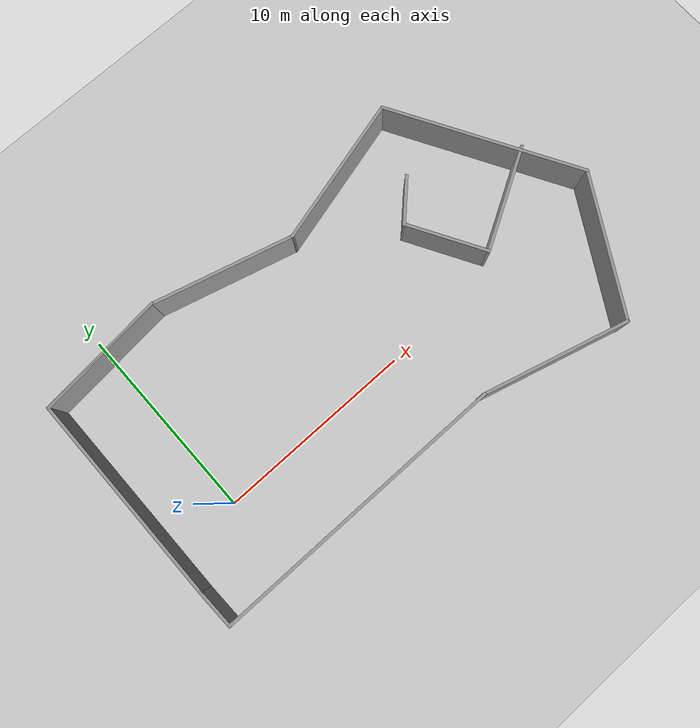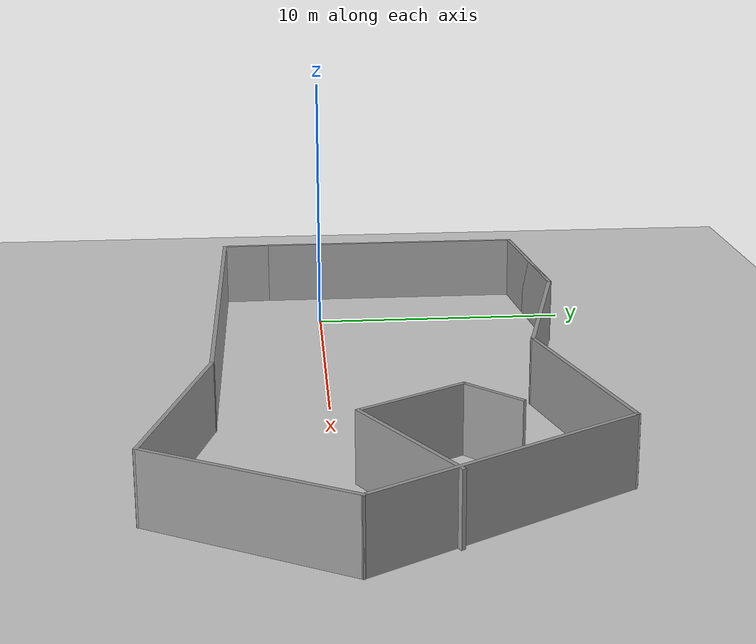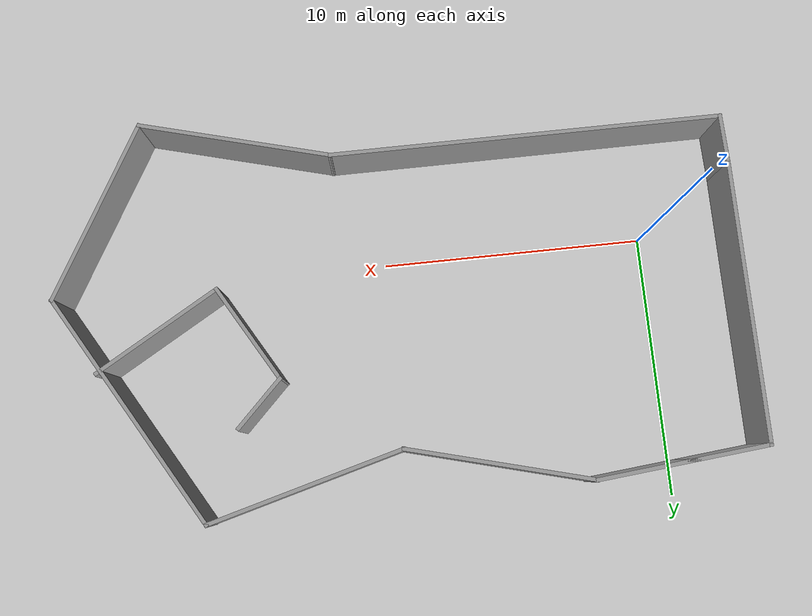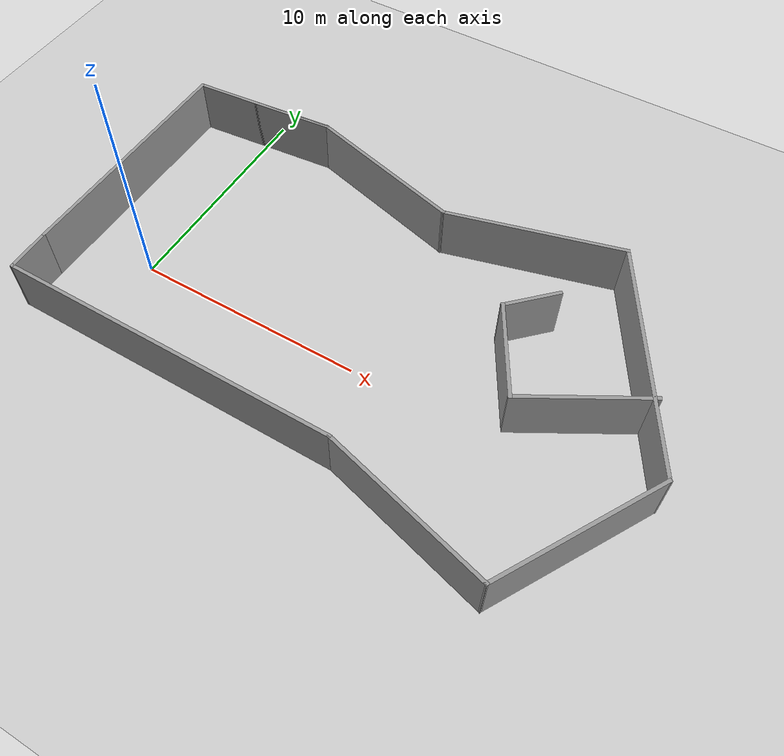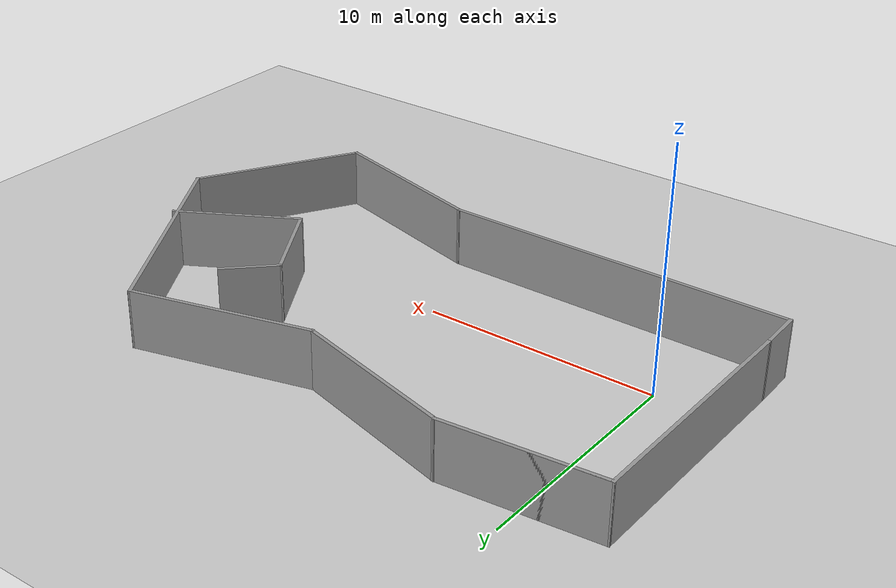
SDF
<sdf version="1.7">
 <world name="default">
  <light name="sun" type="directional">
   <pose>0 0 10 0 -0 0</pose>
   <diffuse>0.8 0.8 0.8 1</diffuse>
   <specular>0.2 0.2 0.2 1</specular>
   <attenuation>
    <range>1000</range>
    <constant>0.9</constant>
    <linear>0.01</linear>
    <quadratic>0.001</quadratic>
   </attenuation>
   <direction>-0.5 0.1 -0.9</direction>
   <spot><inner_angle>0</inner_angle><outer_angle>0</outer_angle><falloff>0</falloff></spot>
  </light>
  <model name="ground_plane">
   <static>1</static>
   <link name="link">
    <collision name="collision">
     <geometry><plane><normal>0 0 1</normal><size>100 100</size></plane></geometry>
     <surface><friction><ode><mu>100</mu><mu2>50</mu2></ode></friction></surface>
    </collision>
    <visual name="visual">
     <cast_shadows>0</cast_shadows>
     <geometry><plane><normal>0 0 1</normal><size>100 100</size></plane></geometry>
     <material>
      <script><uri>file://media/materials/scripts/gazebo.material</uri><name>Gazebo/Grey</name></script>
     </material>
    </visual>
   </link>
  </model>
  <gravity>0 0 -9.8</gravity>
  <magnetic_field>6e-06 2.3e-05 -4.2e-05</magnetic_field>
  <atmosphere type="adiabatic"/>
  <physics type="ode">
   <max_step_size>0.001</max_step_size>
   <real_time_factor>1</real_time_factor>
   <real_time_update_rate>1000</real_time_update_rate>
  </physics>
  <scene><ambient>0.4 0.4 0.4 1</ambient><background>0.7 0.7 0.7 1</background><shadows>1</shadows></scene>
  <audio><device>default</device></audio>
  <spherical_coordinates>
   <surface_model>EARTH_WGS84</surface_model>
   <latitude_deg>0</latitude_deg>
   <longitude_deg>0</longitude_deg>
   <elevation>0</elevation>
   <heading_deg>0</heading_deg>
  </spherical_coordinates>
  <model name="walls2">
   <pose>9.63616 1.64228 0 0 -0 0</pose>
   <link name="Wall_0">
    <collision name="Wall_0_Collision">
     <geometry><box><size>10.75 0.15 2.5</size></box></geometry>
     <pose>0 0 1.25 0 -0 0</pose>
    </collision>
    <visual name="Wall_0_Visual">
     <pose>0 0 1.25 0 -0 0</pose>
     <geometry><box><size>10.75 0.15 2.5</size></box></geometry>
     <material>
      <script><uri>file://media/materials/scripts/gazebo.material</uri><name>Gazebo/Grey</name></script>
      <ambient>1 1 1 1</ambient>
     </material>
     <meta><layer>0</layer></meta>
    </visual>
    <pose>-12.8466 1.51741 0 0 -0 1.5708</pose>
   </link>
   <link name="Wall_10">
    <collision name="Wall_10_Collision">
     <geometry><box><size>7.5 0.15 2.5</size></box></geometry>
     <pose>0 0 1.25 0 -0 0</pose>
    </collision>
    <visual name="Wall_10_Visual">
     <pose>0 0 1.25 0 -0 0</pose>
     <geometry><box><size>7.5 0.15 2.5</size></box></geometry>
     <material>
      <script><uri>file://media/materials/scripts/gazebo.material</uri><name>Gazebo/Grey</name></script>
      <ambient>1 1 1 1</ambient>
     </material>
     <meta><layer>0</layer></meta>
    </visual>
    <pose>10.9884 -4.37343 0 0 -0 -2.0944</pose>
   </link>
   <link name="Wall_11">
    <collision name="Wall_11_Collision">
     <geometry><box><size>7.5 0.15 2.5</size></box></geometry>
     <pose>0 0 1.25 0 -0 0</pose>
    </collision>
    <visual name="Wall_11_Visual">
     <pose>0 0 1.25 0 -0 0</pose>
     <geometry><box><size>7.5 0.15 2.5</size></box></geometry>
     <material>
      <script><uri>file://media/materials/scripts/gazebo.material</uri><name>Gazebo/Grey</name></script>
      <ambient>1 1 1 1</ambient>
     </material>
     <meta><layer>0</layer></meta>
    </visual>
    <pose>5.60115 -6.60491 0 0 -0 2.87979</pose>
   </link>
   <link name="Wall_12">
    <collision name="Wall_12_Collision">
     <geometry><box><size>15 0.15 2.5</size></box></geometry>
     <pose>0 0 1.25 0 -0 0</pose>
    </collision>
    <visual name="Wall_12_Visual">
     <pose>0 0 1.25 0 -0 0</pose>
     <geometry><box><size>15 0.15 2.5</size></box></geometry>
     <material>
      <script><uri>file://media/materials/scripts/gazebo.material</uri><name>Gazebo/Grey</name></script>
      <ambient>1 1 1 1</ambient>
     </material>
     <meta><layer>0</layer></meta>
    </visual>
    <pose>-5.37362 -5.65375 0 0 -0 3.14159</pose>
   </link>
   <link name="Wall_13">
    <collision name="Wall_13_Collision">
     <geometry><box><size>2.02178 0.15 2.5</size></box></geometry>
     <pose>0 0 1.25 0 -0 0</pose>
    </collision>
    <visual name="Wall_13_Visual">
     <pose>0 0 1.25 0 -0 0</pose>
     <geometry><box><size>2.02178 0.15 2.5</size></box></geometry>
     <material>
      <script><uri>file://media/materials/scripts/gazebo.material</uri><name>Gazebo/Grey</name></script>
      <ambient>1 1 1 1</ambient>
     </material>
     <meta><layer>0</layer></meta>
    </visual>
    <pose>-12.8226 -4.71817 0 0 -0 1.59645</pose>
   </link>
   <link name="Wall_5">
    <collision name="Wall_5_Collision">
     <geometry><box><size>6.60228 0.15 2.5</size></box></geometry>
     <pose>0 0 1.25 0 -0 0</pose>
    </collision>
    <visual name="Wall_5_Visual">
     <pose>0 0 1.25 0 -0 0</pose>
     <geometry><box><size>6.60228 0.15 2.5</size></box></geometry>
     <material>
      <script><uri>file://media/materials/scripts/gazebo.material</uri><name>Gazebo/Grey</name></script>
      <ambient>1 1 1 1</ambient>
     </material>
     <meta><layer>0</layer></meta>
    </visual>
    <pose>-9.63491 7.12204 0 0 -0 -3.04703</pose>
   </link>
   <link name="Wall_6">
    <collision name="Wall_6_Collision">
     <geometry><box><size>6.60228 0.15 2.5</size></box></geometry>
     <pose>0 0 1.25 0 -0 0</pose>
    </collision>
    <visual name="Wall_6_Visual">
     <pose>0 0 1.25 0 -0 0</pose>
     <geometry><box><size>6.60228 0.15 2.5</size></box></geometry>
     <material>
      <script><uri>file://media/materials/scripts/gazebo.material</uri><name>Gazebo/Grey</name></script>
      <ambient>1 1 1 1</ambient>
     </material>
     <meta><layer>0</layer></meta>
    </visual>
    <pose>-9.63491 7.12204 0 0 -0 0.094565</pose>
   </link>
   <link name="Wall_7">
    <collision name="Wall_7_Collision">
     <geometry><box><size>7.25 0.15 2.5</size></box></geometry>
     <pose>0 0 1.25 0 -0 0</pose>
    </collision>
    <visual name="Wall_7_Visual">
     <pose>0 0 1.25 0 -0 0</pose>
     <geometry><box><size>7.25 0.15 2.5</size></box></geometry>
     <material>
      <script><uri>file://media/materials/scripts/gazebo.material</uri><name>Gazebo/Grey</name></script>
      <ambient>1 1 1 1</ambient>
     </material>
     <meta><layer>0</layer></meta>
    </visual>
    <pose>-2.99414 6.50785 0 0 -0 -0.261799</pose>
   </link>
   <link name="Wall_8">
    <collision name="Wall_8_Collision">
     <geometry><box><size>7.75 0.15 2.5</size></box></geometry>
     <pose>0 0 1.25 0 -0 0</pose>
    </collision>
    <visual name="Wall_8_Visual">
     <pose>0 0 1.25 0 -0 0</pose>
     <geometry><box><size>7.75 0.15 2.5</size></box></geometry>
     <material>
      <script><uri>file://media/materials/scripts/gazebo.material</uri><name>Gazebo/Grey</name></script>
      <ambient>1 1 1 1</ambient>
     </material>
     <meta><layer>0</layer></meta>
    </visual>
    <pose>4.10541 6.57256 0 0 -0 0.261799</pose>
   </link>
   <link name="Wall_9">
    <collision name="Wall_9_Collision">
     <geometry><box><size>10.25 0.15 2.5</size></box></geometry>
     <pose>0 0 1.25 0 -0 0</pose>
    </collision>
    <visual name="Wall_9_Visual">
     <pose>0 0 1.25 0 -0 0</pose>
     <geometry><box><size>10.25 0.15 2.5</size></box></geometry>
     <material>
      <script><uri>file://media/materials/scripts/gazebo.material</uri><name>Gazebo/Grey</name></script>
      <ambient>1 1 1 1</ambient>
     </material>
     <meta><layer>0</layer></meta>
    </visual>
    <pose>10.3009 3.18264 0 0 -0 -1.0472</pose>
   </link>
   <static>1</static>
  </model>
  <model name="walls3">
   <pose>10.9369 2.31935 0 0 -0 0</pose>
   <link name="Wall_18">
    <collision name="Wall_18_Collision">
     <geometry><box><size>5.5 0.15 2.5</size></box></geometry>
     <pose>0 0 1.25 0 -0 0</pose>
    </collision>
    <visual name="Wall_18_Visual">
     <pose>0 0 1.25 0 -0 0</pose>
     <geometry><box><size>5.5 0.15 2.5</size></box></geometry>
     <material>
      <script><uri>file://media/materials/scripts/gazebo.material</uri><name>Gazebo/Grey</name></script>
      <ambient>1 1 1 1</ambient>
     </material>
     <meta><layer>0</layer></meta>
    </visual>
    <pose>7.74218 -0.315815 0 0 -0 -2.61799</pose>
   </link>
   <link name="Wall_19">
    <collision name="Wall_19_Collision">
     <geometry><box><size>4.25 0.15 2.5</size></box></geometry>
     <pose>0 0 1.25 0 -0 0</pose>
    </collision>
    <visual name="Wall_19_Visual">
     <pose>0 0 1.25 0 -0 0</pose>
     <geometry><box><size>4.25 0.15 2.5</size></box></geometry>
     <material>
      <script><uri>file://media/materials/scripts/gazebo.material</uri><name>Gazebo/Grey</name></script>
      <ambient>1 1 1 1</ambient>
     </material>
     <meta><layer>0</layer></meta>
    </visual>
    <pose>4.40056 0.122037 0 0 -0 2.0944</pose>
   </link>
   <link name="Wall_20">
    <collision name="Wall_20_Collision">
     <geometry><box><size>2.5 0.15 2.5</size></box></geometry>
     <pose>0 0 1.25 0 -0 0</pose>
    </collision>
    <visual name="Wall_20_Visual">
     <pose>0 0 1.25 0 -0 0</pose>
     <geometry><box><size>2.5 0.15 2.5</size></box></geometry>
     <material>
      <script><uri>file://media/materials/scripts/gazebo.material</uri><name>Gazebo/Grey</name></script>
      <ambient>1 1 1 1</ambient>
     </material>
     <meta><layer>0</layer></meta>
    </visual>
    <pose>4.20641 2.72824 0 0 -0 0.785398</pose>
   </link>
   <static>1</static>
  </model>
 </world>
</sdf>
